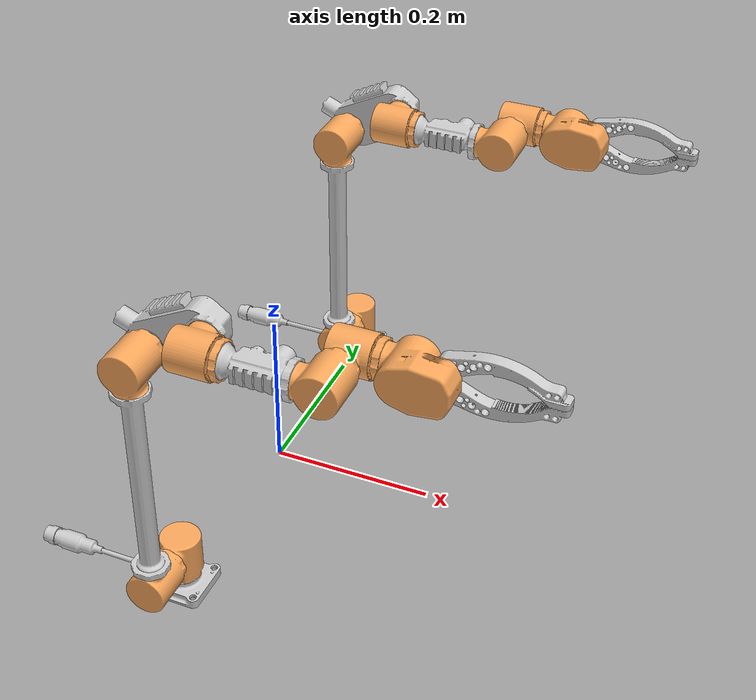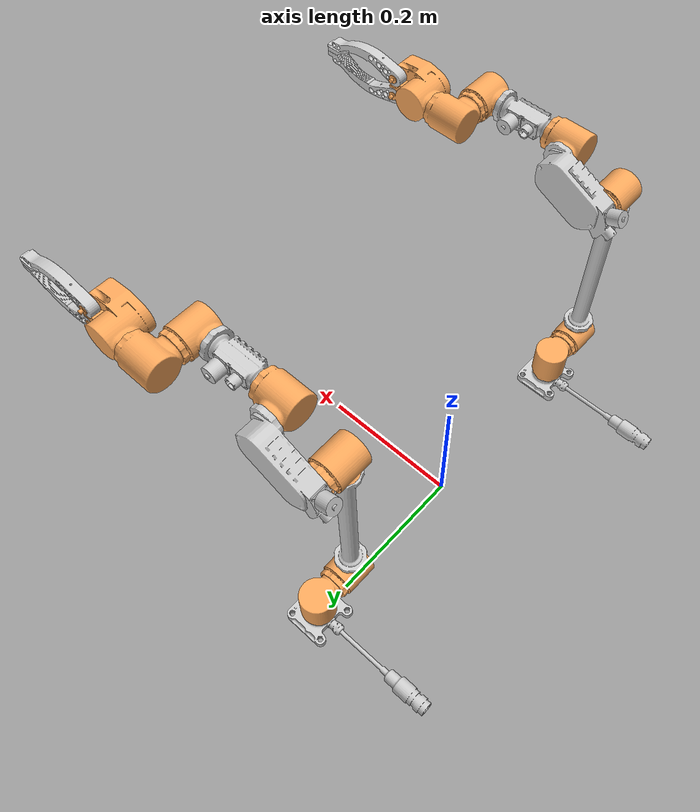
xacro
<?xml version="1.0" encoding="utf-8"?>
<robot
  name="hdt_arm" xmlns:xacro="http://www.ros.org/wiki/xacro"  xmlns:xs="http://www.w3.org/2001/XMLSchema" xmlns:xsi="http://www.w3.org/2001/XMLSchema-instance">

    <link name="base_link"/>

    <joint name="left_base" type="fixed">
        <origin xyz="0 0.25 0" rpy="0 0 0"/>
        <parent link="base_link"/>
        <child link="leftbase_link"/>
    </joint>

    <joint name="right_base" type="fixed">
        <origin xyz="0 -0.25 0" rpy="0 0 0"/>
        <parent link="base_link"/>
        <child link="rightbase_link"/>
    </joint>

<xacro:include filename="$(find hdt_6dof_a24_pincer_description)/urdf/hdt_arm_prefix.xacro" />
<xacro:hdt_arm prefix="left"/>
<xacro:hdt_arm prefix="right"/>

</robot>

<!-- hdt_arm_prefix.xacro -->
<robot name="hdt_arm" xmlns:xacro="http://www.ros.org/wiki/xacro">

    <!-- constants -->
    <xacro:property name="M_PI" value="3.1415926535897931"/>

    <!-- mechanical constants -->
    <xacro:property name="drive_length" value="0.03855"/>
    <xacro:property name="drive_offset" value="0.02455"/>
    <xacro:property name="tube_diameter" value="0.0515"/>
    <xacro:property name="tube1_length" value="0.349546"/>
    <xacro:property name="tube2_length" value="0.33294"/>
    <xacro:property name="pedestal_to_drive" value="0.05515"/>
    <xacro:property name="drive_to_drive" value="0.06275"/>
    <xacro:property name="prox_span" value="0.3004"/>
    <xacro:property name="drive_to_box" value="0.03865"/>
    <xacro:property name="box_tilt" value="0.471238898"/>
    <xacro:property name="box_length" value="0.080"/>
    <xacro:property name="box_to_drive" value="0.03517"/>
    <xacro:property name="distal_mid" value="0.07295"/>
    <xacro:property name="distal_length" value="0.13825"/>
    <xacro:property name="finger_forward" value="0.036761"/>
    <xacro:property name="finger_lateral" value="0.0135"/>

    <!-- control constants -->
    <xacro:property name="drive_velocity" value="${M_PI/4}"/>

    <!-- materials -->
    <material name="drive_color">
        <color rgba="${250/255} ${167/255} ${91/255} 1.0"/>
    </material>

    <material name="link_color">
        <color rgba="${204/255} ${204/255} ${204/255} 1.0"/>
    </material>

    <material name="finger_color">
        <color rgba="${204/255} ${204/255} ${204/255} 1.0"/>
    </material>

    <xacro:property name="A24_pincer_ratio" value="0.86" />

    <!--A35 drive simplified collision properties-->
    <xacro:property name="A24_collision_radius" value="0.025"/>
    <xacro:property name="A24_collision_length" value="0.07"/>
    <xacro:property name="A24_collision_offset" value="-0.01"/>

     <!-- default inertia -->
     <xacro:macro name="default_inertia">
           <inertia
           ixx="0.005" ixy="0.0" ixz="0.0"
           iyy="0.005" iyz="0.0"
           izz="0.005"/>
     </xacro:macro>

<xacro:macro name="hdt_arm" params="prefix">

    <!-- segment 0 -->
    <link name="${prefix}base_link"/>

    <!-- pedestal -->
    <joint name="${prefix}pedestal_joint" type="fixed">
        <origin xyz="0 0 0" rpy="0 0 0"/>
        <parent link="${prefix}base_link"/>
        <child link="${prefix}pedestal_link"/>
    </joint>

    <link name="${prefix}pedestal_link">
        <collision>
            <origin xyz="0 0 0" rpy="0 0 0"/>
            <geometry>
                <mesh filename="package://hdt_6dof_a24_pincer_description/meshes/H021285 - SHAREABLE - A24 Q PEDESTAL ASSY - EMD_1.STL"/>
            </geometry>
        </collision>

        <visual>
            <origin xyz="0 0 0" rpy="0 0 0"/>
            <geometry>
                <mesh filename="package://hdt_6dof_a24_pincer_description/meshes/H021285 - SHAREABLE - A24 Q PEDESTAL ASSY - EMD_1.STL"/>
            </geometry>
            <material name="link_color"/>
        </visual>

        <inertial>
            <origin xyz="0 0 0" rpy="0 0 0"/>
            <mass value="0"/>
            <xacro:default_inertia />
        </inertial>
    </link>

    <!-- drive 1 -->
    <joint name="${prefix}joint1" type="revolute">
        <axis xyz="0 0 1"/>
        <limit effort="60.0" lower="${-M_PI*2}" upper="${M_PI*2}" velocity="${drive_velocity}"/>
        <origin xyz="0 0 ${pedestal_to_drive}" rpy="0 0 ${-M_PI/2}"/>
        <parent link="${prefix}pedestal_link"/>
        <child link="${prefix}drive1_link"/>
        <dynamics damping="0.7" friction="0.0"/>
    </joint>

    <link name="${prefix}drive1_link">
      <collision>
        <origin xyz="0 0 ${A24_collision_offset}" rpy="0 0 0" />
        <geometry>
          <cylinder radius="${A24_collision_radius}" length="${A24_collision_length}"/>
        </geometry>
      </collision>

        <visual>
            <origin xyz="0 0 0" rpy="0 0 0"/>
            <geometry>
                <mesh filename="package://hdt_6dof_a24_pincer_description/meshes/H020840 - SHAREABLE - A24 DRIVE MODULE - EMD_1.STL"/>
            </geometry>
            <material name="drive_color"/>
        </visual>

        <inertial>
            <origin xyz="0 0 0" rpy="0 0 0"/>
            <mass value="0"/>
            <xacro:default_inertia />
        </inertial>
    </link>

    <!-- drive 2 -->
    <joint name="${prefix}joint2" type="revolute">
        <axis xyz="0 0 1"/>
        <limit effort="60.0" lower="-2" upper="2" velocity="${drive_velocity}"/>
        <origin xyz="${drive_to_drive} 0 0" rpy="${M_PI} ${-M_PI/2} 0"/>
        <parent link="${prefix}drive1_link"/>
        <child link="${prefix}drive2_link"/>
        <dynamics damping="0.7" friction="0.0"/>
    </joint>

    <link name="${prefix}drive2_link">
      <collision>
        <origin xyz="0 0 ${A24_collision_offset}" rpy="0 0 0" />
        <geometry>
          <cylinder radius="${A24_collision_radius}" length="${A24_collision_length}"/>
        </geometry>
      </collision>

        <visual>
            <origin xyz="0 0 0" rpy="0 0 0"/>
            <geometry>
                <mesh filename="package://hdt_6dof_a24_pincer_description/meshes/H020840 - SHAREABLE - A24 DRIVE MODULE - EMD_1.STL"/>
            </geometry>
            <material name="drive_color"/>
        </visual>

        <inertial>
            <origin xyz="0 0 0" rpy="0 0 0"/>
            <mass value="0"/>
            <xacro:default_inertia />
        </inertial>
    </link>

    <!-- proximal tube -->
    <joint name="${prefix}proximal_tube_joint" type="fixed">
        <origin xyz="${prox_span/2} 0 0" rpy="0 0 0" />
        <parent link="${prefix}drive2_link"/>
        <child link="${prefix}proximal_tube_link"/>
    </joint>

    <link name="${prefix}proximal_tube_link">
        <collision>
            <origin xyz="0 0 0" rpy="0 0 0"/>
            <geometry>
                <mesh filename="package://hdt_6dof_a24_pincer_description/meshes/H021435 - SHAREABLE - A24 PROXIMAL TUBE ASSY - EMD_1.STL"/>
            </geometry>
        </collision>

        <visual>
            <origin xyz="0 0 0" rpy="0 0 0"/>
            <geometry>
               <mesh filename="package://hdt_6dof_a24_pincer_description/meshes/H021435 - SHAREABLE - A24 PROXIMAL TUBE ASSY - EMD_1.STL"/>
            </geometry>
            <material name="link_color"/>
        </visual>

        <inertial>
            <origin xyz="0 0 0" rpy="0 0 0"/>
            <mass value="0"/>
            <xacro:default_inertia />
        </inertial>
    </link>

    <!-- drive 3 link - place holder for drive housing model -->
    <joint name="${prefix}drive3_housing_joint" type="fixed">
        <origin xyz="${prox_span/2} 0 0" rpy="0 0 ${M_PI}"/>
        <parent link="${prefix}proximal_tube_link"/>
        <child link="${prefix}drive3_housing_link"/>
    </joint>

    <link name="${prefix}drive3_housing_link">
      <collision>
        <origin xyz="0 0 ${A24_collision_offset}" rpy="0 0 0" />
        <geometry>
          <cylinder radius="${A24_collision_radius}" length="${A24_collision_length}"/>
        </geometry>
      </collision>

        <visual>
            <origin xyz="0 0 0" rpy="0 0 0"/>
            <geometry>
               <mesh filename="package://hdt_6dof_a24_pincer_description/meshes/H020840 - SHAREABLE - A24 DRIVE MODULE - EMD_1.STL"/>
            </geometry>
            <material name="drive_color"/>
        </visual>

    </link>

  <!-- drive 3 -->
    <joint name="${prefix}joint3" type="revolute">
        <axis xyz="0 0 1"/>
        <limit effort="60.0" lower="${-M_PI/2}" upper="${M_PI/2}" velocity="${drive_velocity}"/>
        <origin xyz="0 0 0" rpy="0 0 ${box_tilt-M_PI}"/>
        <parent link="${prefix}drive3_housing_link"/>
        <child link="${prefix}drive3_link"/>
        <dynamics damping="0.7" friction="0.0"/>
    </joint>

    <link name="${prefix}drive3_link">

        <inertial>
            <origin xyz="0 0 0" rpy="0 0 0"/>
            <mass value="0"/>
            <xacro:default_inertia />
        </inertial>
    </link>

  <!-- elbow box -->
    <joint name="${prefix}elbow_box_joint" type="fixed">
        <origin xyz="0 0 ${-drive_to_box}" rpy="0 0 ${-M_PI/2}"/>
        <parent link="${prefix}drive3_link"/>
        <child link="${prefix}elbow_box_link"/>
        <dynamics damping="0.7" friction="0.0"/>
    </joint>

    <link name="${prefix}elbow_box_link">
        <collision>
            <origin xyz="0 0 0" rpy="0 0 0"/>
            <geometry>
                <mesh filename="package://hdt_6dof_a24_pincer_description/meshes/H021330 - SHAREABLE - A24 CRS-I ELBOW BRACKET COMPUTER ASSY - EMD_1.STL"/>
            </geometry>
        </collision>

        <visual>
            <origin xyz="0 0 0" rpy="0 0 0"/>
            <geometry>
               <mesh filename="package://hdt_6dof_a24_pincer_description/meshes/H021330 - SHAREABLE - A24 CRS-I ELBOW BRACKET COMPUTER ASSY - EMD_1.STL"/>
            </geometry>
            <material name="link_color"/>
        </visual>

        <inertial>
            <origin xyz="0 0 0" rpy="0 0 0"/>
            <mass value="0"/>
            <xacro:default_inertia />
        </inertial>
    </link>

<!-- drive 4 link - place holder for drive housing model -->
    <joint name="${prefix}drive4_housing_joint" type="fixed">
        <origin xyz="${box_length} 0 ${box_to_drive}" rpy="0 ${M_PI/2} ${M_PI-box_tilt}"/>
        <parent link="${prefix}elbow_box_link"/>
        <child link="${prefix}drive4_housing_link"/>
    </joint>

    <link name="${prefix}drive4_housing_link">
      <collision>
        <origin xyz="0 0 ${A24_collision_offset}" rpy="0 0 0" />
        <geometry>
          <cylinder radius="${A24_collision_radius}" length="${A24_collision_length}"/>
        </geometry>
      </collision>

        <visual>
            <origin xyz="0 0 0" rpy="0 0 0"/>
            <geometry>
               <mesh filename="package://hdt_6dof_a24_pincer_description/meshes/H020840 - SHAREABLE - A24 DRIVE MODULE - EMD_1.STL"/>
            </geometry>
            <material name="drive_color"/>
        </visual>

    </link>

  <!-- drive 4 -->
    <joint name="${prefix}joint4" type="revolute">
        <axis xyz="0 0 1"/>
        <limit effort="60.0" lower="${-M_PI*2}" upper="${M_PI*2}" velocity="${drive_velocity}"/>
        <origin xyz="0 0 0" rpy="0 0 0"/>
        <parent link="${prefix}drive4_housing_link"/>
        <child link="${prefix}drive4_link"/>
        <dynamics damping="0.7" friction="0.0"/>
    </joint>

    <link name="${prefix}drive4_link">

        <inertial>
            <origin xyz="0 0 0" rpy="0 0 0"/>
            <mass value="0"/>
            <xacro:default_inertia />
        </inertial>
    </link>

<!-- distal tube -->
    <joint name="${prefix}distal_tube_joint" type="fixed">
        <origin xyz="0 0 ${-distal_mid}" rpy="0 0 0" />
        <parent link="${prefix}drive4_link"/>
        <child link="${prefix}distal_tube_link"/>
    </joint>

    <link name="${prefix}distal_tube_link">
        <collision>
            <origin xyz="0 0 0" rpy="${M_PI} 0 0"/>
            <geometry>
                <mesh filename="package://hdt_6dof_a24_pincer_description/meshes/H021436 - SHAREABLE - A24 DISTAL TUBE ASSY - EMD_1.STL"/>
            </geometry>
        </collision>

        <visual>
            <origin xyz="0 0 0" rpy="${M_PI} 0 0"/>
            <geometry>
               <mesh filename="package://hdt_6dof_a24_pincer_description/meshes/H021436 - SHAREABLE - A24 DISTAL TUBE ASSY - EMD_1.STL"/>
            </geometry>
            <material name="link_color"/>
        </visual>

        <inertial>
            <origin xyz="0 0 0" rpy="0 0 0"/>
            <mass value="0"/>
            <xacro:default_inertia />
        </inertial>
    </link>

    <!-- drive 5 link - place holder for drive housing model -->
    <joint name="${prefix}drive5_housing_joint" type="fixed">
        <origin xyz="0 0 ${-distal_length + distal_mid}" rpy="0 ${-M_PI/2} 0"/>
        <parent link="${prefix}distal_tube_link"/>
        <child link="${prefix}drive5_housing_link"/>
    </joint>

    <link name="${prefix}drive5_housing_link">
      <collision>
        <origin xyz="0 0 ${A24_collision_offset}" rpy="0 0 0" />
        <geometry>
          <cylinder radius="${A24_collision_radius}" length="${A24_collision_length}"/>
        </geometry>
      </collision>

        <visual>
            <origin xyz="0 0 0" rpy="0 0 0"/>
            <geometry>
               <mesh filename="package://hdt_6dof_a24_pincer_description/meshes/H020840 - SHAREABLE - A24 DRIVE MODULE - EMD_1.STL"/>
            </geometry>
            <material name="drive_color"/>
        </visual>

    </link>

  <!-- drive 5 -->
    <joint name="${prefix}joint5" type="revolute">
        <axis xyz="0 0 1"/>
        <limit effort="60.0" lower="${-M_PI/2}" upper="${M_PI/2}" velocity="${drive_velocity}"/>
        <origin xyz="0 0 0" rpy="0 0 0"/>
        <parent link="${prefix}drive5_housing_link"/>
        <child link="${prefix}drive5_link"/>
        <dynamics damping="0.7" friction="0.0"/>
    </joint>

    <link name="${prefix}drive5_link">

        <inertial>
            <origin xyz="0 0 0" rpy="0 0 0"/>
            <mass value="0"/>
            <xacro:default_inertia />
        </inertial>
    </link>

    <!-- drive 6 link - place holder for drive housing model -->
    <joint name="${prefix}rive6_housing_joint" type="fixed">
        <origin xyz="0 0 ${-drive_to_drive}" rpy="0 ${-M_PI/2} ${M_PI}"/>
        <parent link="${prefix}drive5_link"/>
        <child link="${prefix}drive6_housing_link"/>
    </joint>

    <link name="${prefix}drive6_housing_link">
      <collision>
        <origin xyz="0 0 ${A24_collision_offset}" rpy="0 0 0" />
        <geometry>
          <cylinder radius="${A24_collision_radius}" length="${A24_collision_length}"/>
        </geometry>
      </collision>

        <visual>
            <origin xyz="0 0 0" rpy="0 0 0"/>
            <geometry>
               <mesh filename="package://hdt_6dof_a24_pincer_description/meshes/H020840 - SHAREABLE - A24 DRIVE MODULE - EMD_1.STL"/>
            </geometry>
            <material name="drive_color"/>
        </visual>

    </link>

  <!-- drive 6 -->
    <joint name="${prefix}joint6" type="revolute">
        <axis xyz="0 0 1"/>
        <limit effort="60.0" lower="${-M_PI*2}" upper="${M_PI*2}" velocity="${drive_velocity}"/>
        <origin xyz="0 0 0" rpy="0 0 0"/>
        <parent link="${prefix}drive6_housing_link"/>
        <child link="${prefix}drive6_link"/>
        <dynamics damping="0.7" friction="0.0"/>
    </joint>

    <link name="${prefix}drive6_link">

        <inertial>
            <origin xyz="0 0 0" rpy="0 0 0"/>
            <mass value="0"/>
            <xacro:default_inertia />
        </inertial>
    </link>

<!-- pincer link - place holder for pincer housing model -->
    <joint name="${prefix}pincer_housing_joint" type="fixed">
        <origin xyz="0 0 ${-drive_to_drive}" rpy="0 ${-M_PI/2} 0"/>
        <parent link="${prefix}drive6_link"/>
        <child link="${prefix}pincer_housing_link"/>
    </joint>

    <link name="${prefix}pincer_housing_link">
        <collision>
            <origin xyz="0 0 0" rpy="0 0 0"/>
            <geometry>
                <mesh filename="package://hdt_6dof_a24_pincer_description/meshes/H021094 - SHAREABLE - A24-P PINCER ASSY, NO FINGERS - EMD_1.STL"/>
            </geometry>
        </collision>

        <visual>
            <origin xyz="0 0 0" rpy="0 0 0"/>
            <geometry>
               <mesh filename="package://hdt_6dof_a24_pincer_description/meshes/H021094 - SHAREABLE - A24-P PINCER ASSY, NO FINGERS - EMD_1.STL"/>
            </geometry>
            <material name="drive_color"/>
        </visual>

    </link>

    <!-- Pincer joint, nothing connected to output link use mimic joints to account for gear ratio beteen output and fingers -->
    <joint name="${prefix}pincer_joint" type="revolute">
        <hdt id="10" kmin="75" kmax="150" inertia="0.075"/>
        <axis xyz="0 0 1"/>
        <limit effort="48.0" lower="-0.9" upper="0.2" velocity="${M_PI/4}"/>
        <origin xyz="0.0135 0 0.0375" rpy="0 0 0"/>
        <parent link="${prefix}pincer_housing_link"/>
        <child link="${prefix}pincer_output"/>
        <dynamics damping="0.7" friction="0.0"/>
    </joint>

    <link name="${prefix}pincer_output">
    </link>

  <!-- pincer finger left -->
    <joint name="${prefix}pincerfinger_left" type="revolute">
        <axis xyz="0 0 1"/>
        <limit effort="60.0" lower="0" upper="${M_PI/2}" velocity="${drive_velocity}"/>
        <origin xyz="${-finger_forward} ${-finger_lateral} 0" rpy="0 0 ${-M_PI}"/>
        <parent link="${prefix}pincer_housing_link"/>
        <child link="${prefix}pincerfinger_left_link"/>
        <dynamics damping="0.7" friction="0.0"/>
        <mimic joint="${prefix}pincer_joint" multiplier="${A24_pincer_ratio}" offset="0.0"/>
    </joint>

    <link name="${prefix}pincerfinger_left_link">
        <collision>
            <origin xyz="0 0 0" rpy="0 0 0"/>
            <geometry>
                <mesh filename="package://hdt_6dof_a24_pincer_description/meshes/H020868 - SHAREABLE - A24-P PINCER FINGER, OVERMOLD ASSY - EMD_1.STL"/>
            </geometry>
        </collision>

        <visual>
            <origin xyz="0 0 0" rpy="0 0 0"/>
            <geometry>
               <mesh filename="package://hdt_6dof_a24_pincer_description/meshes/H020868 - SHAREABLE - A24-P PINCER FINGER, OVERMOLD ASSY - EMD_1.STL"/>
            </geometry>
            <material name="finger_color"/>
        </visual>
        <inertial>
            <origin xyz="0 0 0" rpy="0 0 0"/>
            <mass value="0"/>
            <xacro:default_inertia />
        </inertial>
    </link>

<!-- pincer finger left -->
    <joint name="${prefix}pincerfinger_right" type="revolute">
        <axis xyz="0 0 1"/>
        <limit effort="60.0" lower="${-2*M_PI}" upper="${2*M_PI}" velocity="${drive_velocity}"/>
        <origin xyz="${-finger_forward} ${finger_lateral} 0" rpy="${M_PI} 0 ${-M_PI}"/>
        <parent link="${prefix}pincer_housing_link"/>
        <child link="${prefix}pincerfinger_right_link"/>
        <dynamics damping="0.7" friction="0.0"/>
        <mimic joint="${prefix}pincer_joint" multiplier="${A24_pincer_ratio}" offset="0.0"/>
    </joint>

    <link name="${prefix}pincerfinger_right_link">
        <collision>
            <origin xyz="0 0 0" rpy="0 0 0"/>
            <geometry>
                <mesh filename="package://hdt_6dof_a24_pincer_description/meshes/H020868 - SHAREABLE - A24-P PINCER FINGER, OVERMOLD ASSY - EMD_1.STL"/>
            </geometry>
        </collision>

        <visual>
            <origin xyz="0 0 0" rpy="0 0 0"/>
            <geometry>
               <mesh filename="package://hdt_6dof_a24_pincer_description/meshes/H020868 - SHAREABLE - A24-P PINCER FINGER, OVERMOLD ASSY - EMD_1.STL"/>
            </geometry>
            <material name="finger_color"/>
        </visual>
        <inertial>
            <origin xyz="0 0 0" rpy="0 0 0"/>
            <mass value="0"/>
            <xacro:default_inertia />
        </inertial>
    </link>

    <!-- endpoint -->
    <joint name="${prefix}endpoint_joint" type="fixed">
        <origin xyz="-0.15 0 0" rpy="0 0 ${M_PI}"/>
        <parent link="${prefix}pincer_housing_link"/>
        <child link="${prefix}endpoint_link"/>
    </joint>

    <link name="${prefix}endpoint_link">
    </link>

  </xacro:macro>
</robot>
